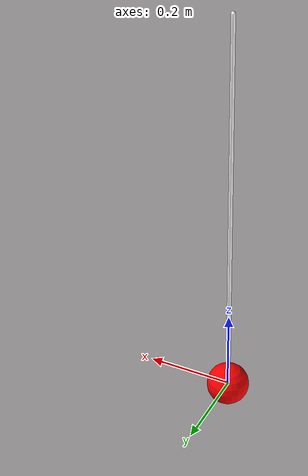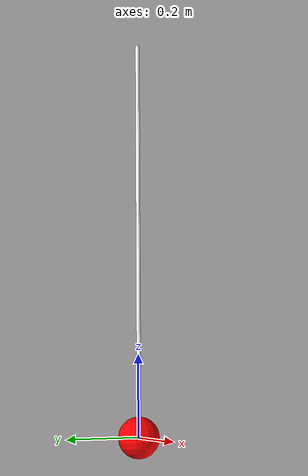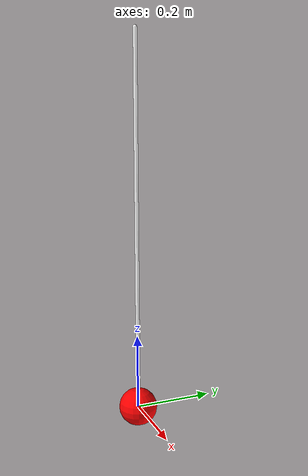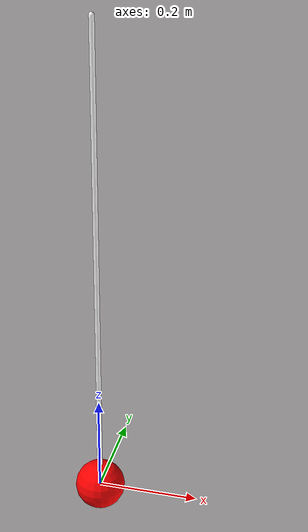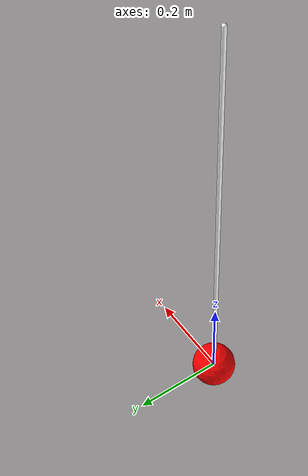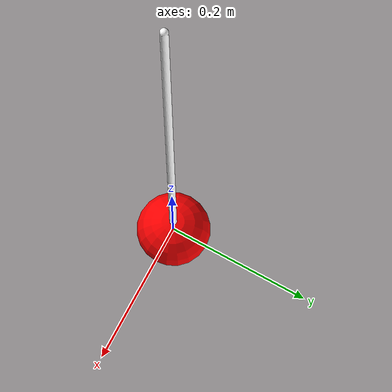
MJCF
<mujoco>
    <option gravity="0 0 -9.81"/>
    <worldbody>
        <body pos="0 0 1">
            <body name="pendulum" pos="0 0 0">
                <geom type="capsule" fromto="0 0 0 0 0 -1" size="0.005" mass="0" rgba="1 1 1 1"/>
                <joint name="pivot" type="hinge" axis="0 1 0" pos="0 0 0"/>
                <body pos="0 0 -1">
                    <geom type="sphere" size="0.05" rgba="1 0 0 1"/>
                </body>
            </body>
        </body>
    </worldbody>
    <actuator>
        <motor joint="pivot" ctrlrange="-1 1" gear="10"/>
    </actuator>
</mujoco>
